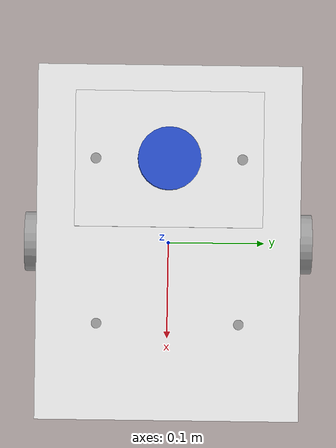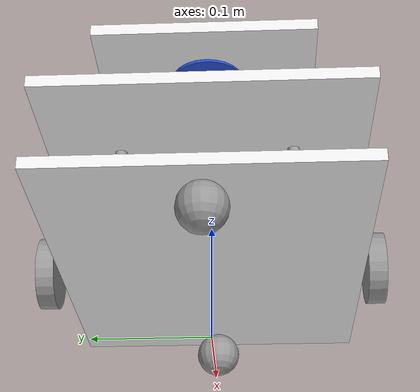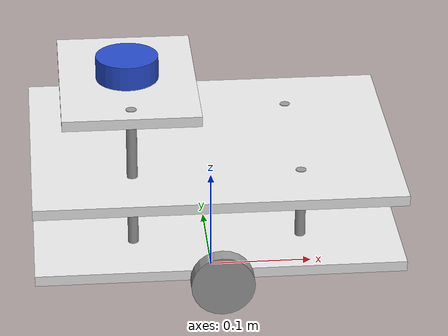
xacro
<?xml version="1.0"?>
<robot xmlns:xacro="http://www.ros.org/wiki/xacro">
    <xacro:property name="base_length" value="0.35"/>
    <xacro:property name="base_width" value="0.26"/>
    <xacro:property name="base_height" value="0.01"/>
    <xacro:property name="wheel_radius" value="0.03"/>
    <xacro:property name="wheel_length" value="0.015"/>
    <xacro:property name="caster_radius" value="${wheel_radius / 1.5}"/>
    <xacro:property name="shaft_length" value="0.017"/>
    <xacro:property name="shaft_radius" value="0.005"/>

    <link name="base_footprint"/>
    <link name="odom"/>

    <link name="base_link">
        <visual>
            <geometry>
                <box size="${base_length} ${base_width} ${base_height}"/>
            </geometry>
            <origin xyz="0 0 ${base_height / 2.0}" rpy="0 0 0"/>
            <material name="white"/>
        </visual>
        <xacro:box_inertia m="5.0" l="${2*base_length}" w="${2*base_width}" h="${2*base_height}"
         xyz="0 0 ${2*base_height / 2.0}" rpy="0 0 0" />
        <collision>
            <geometry>
                <box size="${base_length} ${base_width} ${base_height}"/>
            </geometry>
            <origin xyz="0 0 ${base_height / 2.0}" rpy="0 0 0"/>
        </collision>
    </link>

    <link name="layer1">
        <visual>
            <geometry>
                <box size="${base_length} ${base_width} ${base_height}"/>
            </geometry>
            <origin xyz="0 0 ${base_height / 2.0}" rpy="0 0 0"/>
            <material name="white"/>
        </visual>
        <xacro:box_inertia m="5.0" l="${2*base_length}" w="${2*base_width}" h="${2*base_height}"
         xyz="0 0 ${2*base_height / 2.0}" rpy="0 0 0" />
        <collision>
            <geometry>
                <box size="${base_length} ${base_width} ${base_height}"/>
            </geometry>
            <origin xyz="0 0 ${base_height / 2.0}" rpy="0 0 0"/>
        </collision>
    </link>

    <link name="layer2">
        <visual>
            <geometry>
                <box size="${base_length-0.22} ${base_width-0.08} ${base_height}"/>
            </geometry>
            <origin xyz="0 0 ${base_height / 2.0}" rpy="0 0 0"/>
            <material name="white"/>
        </visual>
        <xacro:box_inertia m="5.0" l="${2*base_length}" w="${2*base_width}" h="${2*base_height}"
         xyz="0 0 ${2*base_height / 2.0}" rpy="0 0 0" />
        <collision>
            <geometry>
                <box size="${base_length} ${base_width} ${base_height}"/>
            </geometry>
            <origin xyz="0 0 ${base_height / 2.0}" rpy="0 0 0"/>
        </collision>
    </link>

    <xacro:macro name="wheel_link" params="prefix">
        <link name="${prefix}_wheel_link">
            <visual>
                <geometry>
                    <cylinder radius="${wheel_radius}" length="${wheel_length}"/>
                </geometry>
                <origin xyz="0 0 0" rpy="${pi/2.0} 0 0"/>
                <material name ="grey"/>
            </visual>
            <xacro:cylinder_inertia m="1.0" r="${2*wheel_radius}" h="${2*wheel_length}" xyz="0 0 0" rpy="${pi/2.0} 0 0"/>
            <collision>
                <geometry>
                    <cylinder radius="${wheel_radius}" length="${wheel_length}"/>
                </geometry>
                <origin xyz="0 0 0" rpy="${pi/2.0} 0 0"/>
            </collision>
        </link>
    </xacro:macro>

    <xacro:wheel_link prefix="left"/>
    <xacro:wheel_link prefix="right"/>

    <xacro:macro name="front_shaft_link" params="prefix">
        <link name="front_${prefix}_shaft_link">
            <visual>
                 <geometry>
                     <cylinder radius="${shaft_radius}" length="0.143"/>
                </geometry>
                <origin xyz="0 0 0" rpy="0 0 0"/>
                <material name ="grey"/>
            </visual>
            <xacro:cylinder_inertia m="0.5" r="${shaft_radius}" h="${shaft_length}" xyz="0 0 0" rpy="0 0 0"/>
            <collision>
                <geometry>
                    <cylinder radius="${shaft_radius}" length="${shaft_length}"/>
                </geometry>
                <origin xyz="0 0 0" rpy="0 0 0"/>
            </collision>
        </link>
    </xacro:macro>

    <xacro:front_shaft_link prefix="right"/>
    <xacro:front_shaft_link prefix="left"/>

    <xacro:macro name="rear_shaft_link" params="prefix">
        <link name="rear_${prefix}_shaft_link">
            <visual>
                 <geometry>
                     <cylinder radius="${shaft_radius}" length="${0.07}"/>
                </geometry>
                <origin xyz="0 0 0" rpy="0 0 0"/>
                <material name ="grey"/>
            </visual>
            <xacro:cylinder_inertia m="0.5" r="${shaft_radius}" h="${shaft_length}" xyz="0 0 0" rpy="0 0 0"/>
            <collision>
                <geometry>
                    <cylinder radius="${shaft_radius}" length="${shaft_length}"/>
                </geometry>
                <origin xyz="0 0 0" rpy="0 0 0"/>
            </collision>
        </link>
    </xacro:macro>

    <xacro:rear_shaft_link prefix="right"/>
    <xacro:rear_shaft_link prefix="left"/>

    <link name="front_caster_wheel_link">
        <visual>
            <geometry>
                <sphere radius="${caster_radius}"/>
            </geometry>
            <origin xyz="0 0 0" rpy="0 0 0"/>
            <material name="grey"/>
        </visual>
        <xacro:sphere_inertia m="0.5" r="${2*caster_radius}" xyz="0 0 0" rpy="0 0 0" />
        <collision>
            <geometry>
                <sphere radius="${caster_radius}"/>
            </geometry>
            <origin xyz="0 0 0" rpy="0 0 0"/>
        </collision>
    </link>

    <link name="rear_caster_wheel_link">
        <visual>
            <geometry>
                <sphere radius="${caster_radius}"/>
            </geometry>
            <origin xyz="0 0 0" rpy="0 0 0"/>
            <material name="grey"/>
        </visual>
        <xacro:sphere_inertia m="0.5" r="${2*caster_radius}" xyz="0 0 0" rpy="0 0 0" />
        <collision>
            <geometry>
                <sphere radius="${caster_radius}"/>
            </geometry>
            <origin xyz="0 0 0" rpy="0 0 0"/>
        </collision>
    </link>

    <link name="laser_frame">
        <visual>
            <geometry>
                <cylinder radius="${wheel_radius}" length="${wheel_length+0.02}"/>
            </geometry>
            <origin xyz="0 0 0" rpy="${pi/2.0} 0 0"/>
            <material name ="blue"/>
        </visual>
        <xacro:cylinder_inertia m="1.0" r="${2*wheel_radius}" h="${2*wheel_length}" xyz="0 0 0" rpy="${pi/2.0} 0 0"/>
        <collision>
            <geometry>
                <cylinder radius="${wheel_radius}" length="${wheel_length}"/>
            </geometry>
            <origin xyz="0 0 0" rpy="${pi/2.0} 0 0"/>
        </collision>
    </link>

    <joint name="odom" type="fixed">
        <parent link="odom"/>
        <child link="base_footprint"/>
        <origin xyz="0 0 ${wheel_radius}" rpy="0 0 0"/>
    </joint>

    <joint name="base_joint" type="fixed">
        <parent link="base_footprint"/>
        <child link="base_link"/>
        <origin xyz="0 0 ${wheel_radius}" rpy="0 0 0"/>
    </joint>

    <joint name="layer1_joint" type="fixed">
        <parent link="base_link"/>
        <child link="layer1"/>
        <origin xyz="0 0 0.07" rpy="0 0 0"/>
    </joint>

    <joint name="layer2_joint" type="fixed">
        <parent link="layer1"/>
        <child link="layer2"/>
        <origin xyz="-0.08 0 0.07" rpy="0 0 0"/>
    </joint>

    <joint name="front_right_shaft_joint" type="fixed">
        <parent link="base_link"/>
        <child link="front_right_shaft_link"/>
        <origin xyz="-0.08 0.07 0.079" rpy="0 0 0"/>
    </joint>

    <joint name="front_left_shaft_joint" type="fixed">
        <parent link="base_link"/>
        <child link="front_left_shaft_link"/>
        <origin xyz="-0.08 -0.07 0.079" rpy="0 0 0"/>
    </joint>

    <joint name="rear_right_shaft_joint" type="fixed">
        <parent link="base_link"/>
        <child link="rear_right_shaft_link"/>
        <origin xyz="0.08 0.07 0.0455" rpy="0 0 0"/>
    </joint>

    <joint name="rear_left_shaft_joint" type="fixed">
        <parent link="base_link"/>
        <child link="rear_left_shaft_link"/>
        <origin xyz="0.08 -0.07 0.0455" rpy="0 0 0"/>
    </joint>

    <joint name="right_wheel_joint" type="fixed">
        <parent link="base_link"/>
        <child link="right_wheel_link"/>
        <origin xyz="0 ${-((base_width / 2.0) + (wheel_length/2.0))} 0" rpy="0 0 0"/>
        <axis xyz="0 1 0"/>
        <limit velocity="100" effort="100"/>
    </joint>

    <joint name="left_wheel_joint" type="fixed">
        <parent link="base_link"/>
        <child link="left_wheel_link"/>
        <origin xyz="0 ${(base_width / 2.0) + (wheel_length/2.0)} 0" rpy="0 0 0"/>
        <axis xyz="0 1 0"/>
        <limit velocity="100" effort="100"/>
    </joint>

    <joint name="rear_caster_wheel_joint" type="fixed">
        <parent link="base_link"/>
        <child link="rear_caster_wheel_link"/>
        <origin xyz="${base_length - 0.2} 0 ${-caster_radius}" rpy="0 0 0"/>
    </joint>

  <joint name="front_caster_wheel_joint" type="fixed">
        <parent link="base_link"/>
        <child link="front_caster_wheel_link"/>
        <origin xyz="${(-base_length) + 0.2} 0 ${-caster_radius}" rpy="0 0 0"/>
    </joint>

    <joint name="laser_joint" type="fixed">
       <parent link="layer2"/>
       <child link="laser_frame"/>
       <origin xyz="0 0 0.015" rpy="300 0 0"/>
    </joint>

    <transmission name="left_wheel_trans">
      <type>transmission_interface/SimpleTransmission</type>
      <joint name="left_wheel_joint">
         <hardwareInterface>hardware_interface/PositionJointInterface</hardwareInterface> <!-- or velocity -->
      </joint>
      <actuator name="left_motor">
         <mechanicalReduction>1</mechanicalReduction>
      </actuator>
    </transmission>

    <transmission name="right_wheel_trans">
      <type>transmission_interface/SimpleTransmission</type>
      <joint name="right_wheel_joint">
         <hardwareInterface>hardware_interface/PositionJointInterface</hardwareInterface> <!-- or velocity -->
      </joint>
      <actuator name="right_motor">
         <mechanicalReduction>1</mechanicalReduction>
      </actuator>
    </transmission>

</robot>
